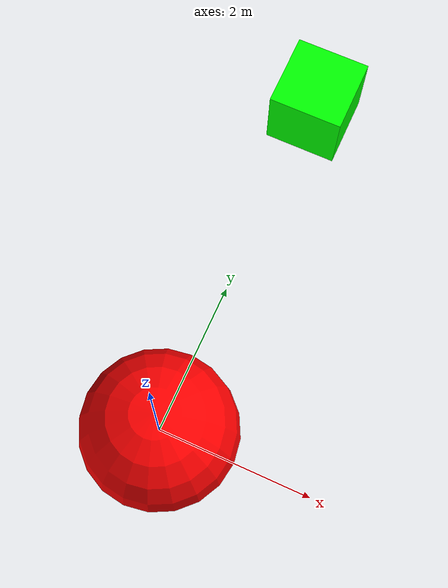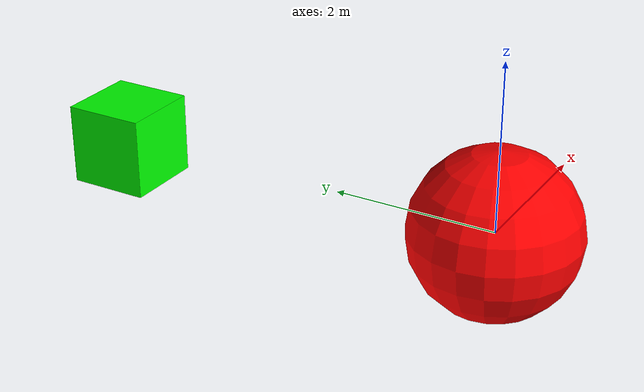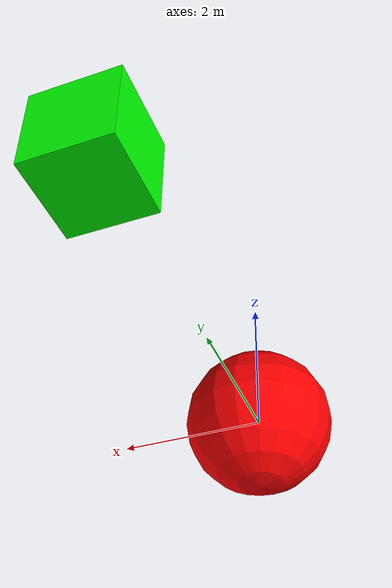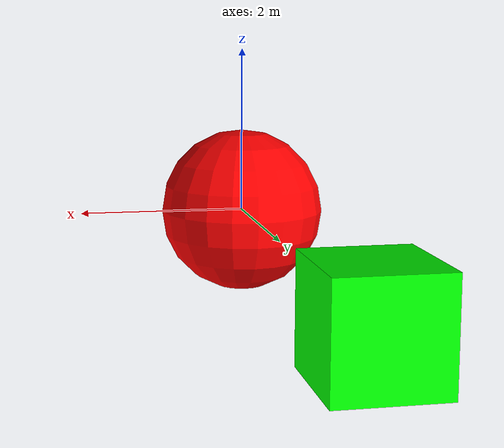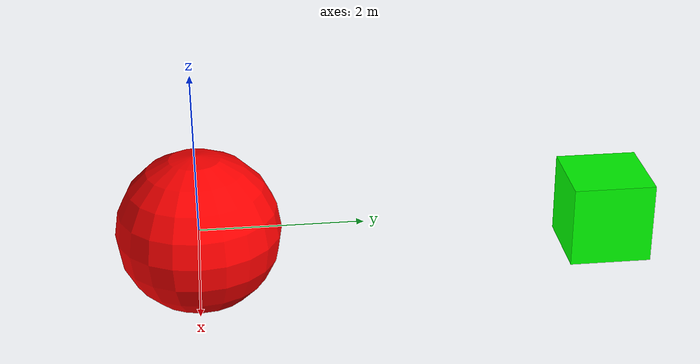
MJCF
<mujoco model="backface_cull_ellipsoid">

  <visual>
    <map znear="0.001" zfar="50" />
    <global azimuth="0" elevation="0" />
  </visual>

  <worldbody>
    <camera name="cam" pos="0 0 0" xyaxes="1 0 0 0 0 1" />

    <geom name="enclosure" type="ellipsoid" size="1 1 1" pos="0 0 0" rgba="1 0 0 1" />
    <geom name="marker" type="box" size="0.5 0.5 0.5" pos="0 5 0" rgba="0 1 0 1" />
  </worldbody>

</mujoco>
